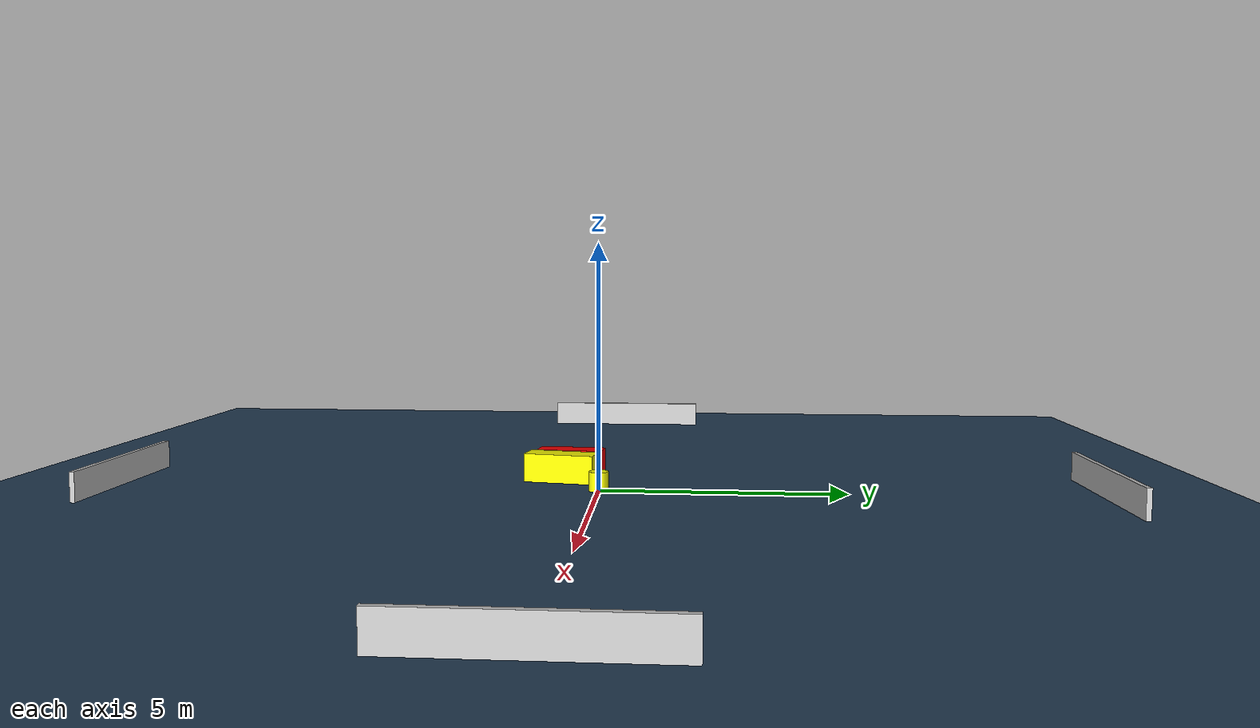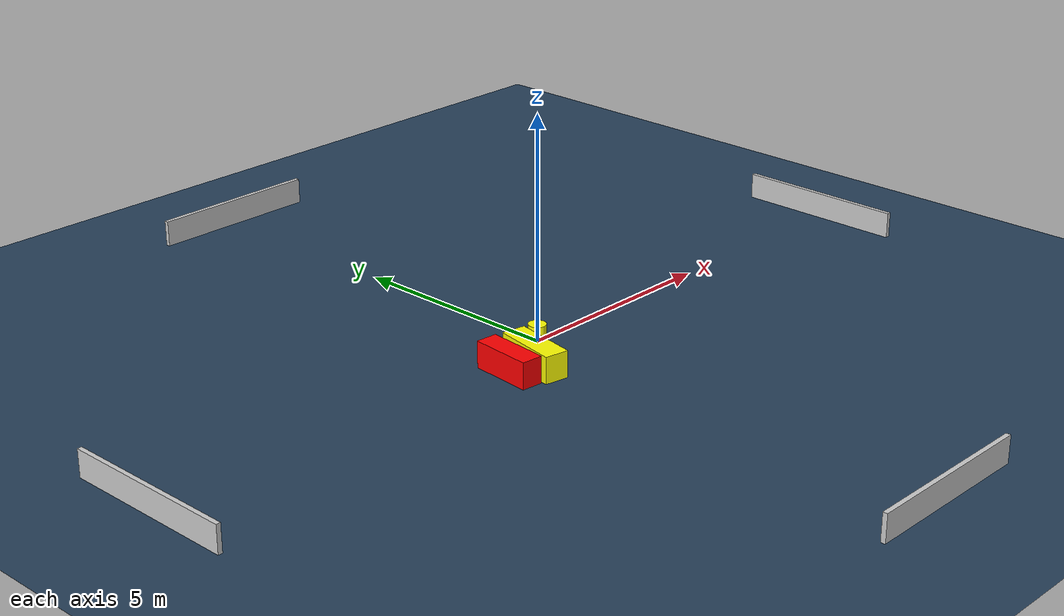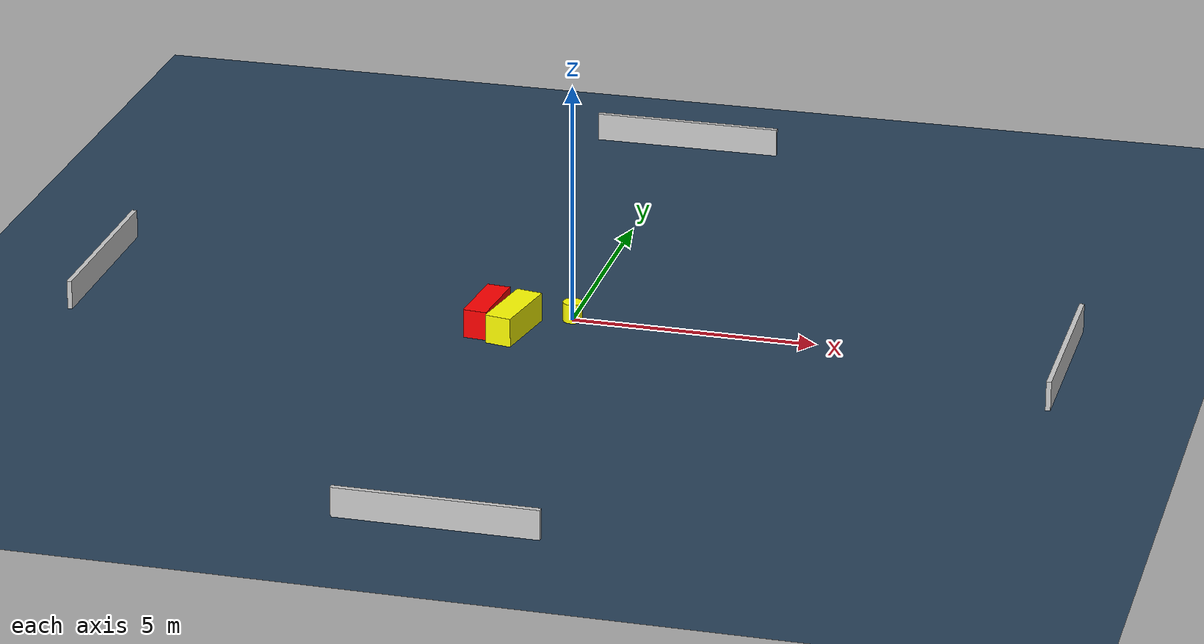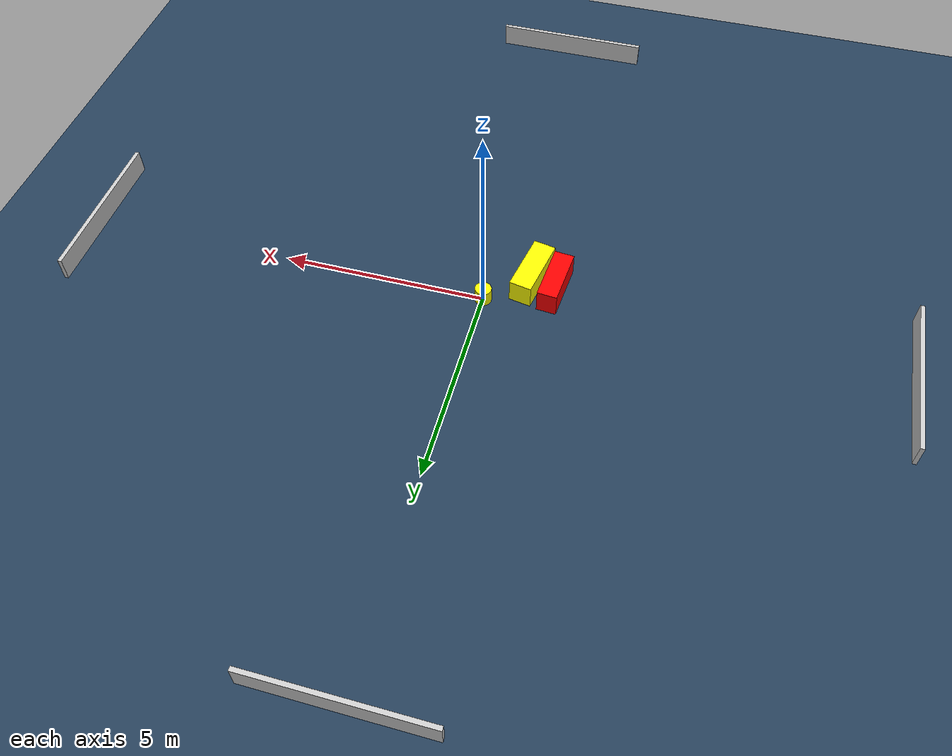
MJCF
<?xml version="1.0" ?>
<mujoco model="generated_environment">
  <option timestep="0.01" integrator="RK4" cone="elliptic"/>
  <default>
    <geom density="1"/>
  </default>
  <asset>
    <texture builtin="gradient" height="3072" name="skybox" rgb1="0.3 0.5 0.7" rgb2="0 0 0" type="skybox" width="512"/>
    <texture builtin="checker" height="300" name="groundplane" rgb1="0.2 0.3 0.4" rgb2="0.1 0.2 0.3" type="2d" width="300"/>
    <material name="groundplane" reflectance="0.2" texrepeat="5 5" texture="groundplane"/>
  </asset>
  <worldbody>
    <light dir="0 0 -1" directional="true" pos="0 0 1.5"/>
    <geom condim="3" friction="0.5 0.005 0.001" material="groundplane" name="floor" pos="0 0 0" size="0 0 0.05" type="plane"/>
    <body name="walls">
      <geom name="wall_1" condim="4" pos="-10.0 0.0 0.3" rgba="0.800000011920929 0.800000011920929 0.800000011920929 1.0" size="0.05 2.0 0.3" type="box"/>
      <geom name="wall_2" condim="4" pos="10.0 0.0 0.3" rgba="0.800000011920929 0.800000011920929 0.800000011920929 1.0" size="0.05 2.0 0.3" type="box"/>
      <geom name="wall_3" condim="4" pos="0.0 -10.0 0.3" rgba="0.800000011920929 0.800000011920929 0.800000011920929 1.0" size="2.0 0.05 0.3" type="box"/>
      <geom name="wall_4" condim="4" pos="0.0 10.0 0.3" rgba="0.800000011920929 0.800000011920929 0.800000011920929 1.0" size="2.0 0.05 0.3" type="box"/>
    </body>
    <body name="robot">
      <joint name="joint_x" type="slide" pos="0 0 0" axis="1 0 0"/>
      <joint name="joint_y" type="slide" pos="0 0 0" axis="0 1 0"/>
      <geom name="robot" type="cylinder" pos="0.0 0.0 0.2" size="0.2 0.2 0.0" mass="5.0" friction="1.0 0.005 0.0001" condim="4" rgba="1.0 1.0 0.0 1.0"/>
    </body>
    <body name="obstacle_1_movable">
      <geom name="obstacle_1_movable" condim="4" pos="-0.9939819927458993 -0.8654736689122656 0.3" euler="0 0 259.6172895373256" friction="0.0 0.005 0.001" rgba="1.0 1.0 0.0 1.0" size="0.7434792069572882 0.2741592408801531 0.3" type="box" mass="0.1"/>
      <joint type="free"/>
    </body>
    <body name="obstacle_2_static">
      <geom name="obstacle_2_static" condim="4" pos="-1.592353955278947 -0.7165767760631249 0.3" euler="0 0 85.09530001158097" friction="0.0 0.005 0.001" rgba="1.0 0.0 0.0 1.0" size="0.7022603257094118 0.24318820360673005 0.3" type="box"/>
    </body>
  </worldbody>
  <actuator>
    <motor name="actuator_x" joint="joint_x" gear="1" ctrlrange="-1 1"/>
    <motor name="actuator_y" joint="joint_y" gear="1" ctrlrange="-1 1"/>
  </actuator>
</mujoco>
